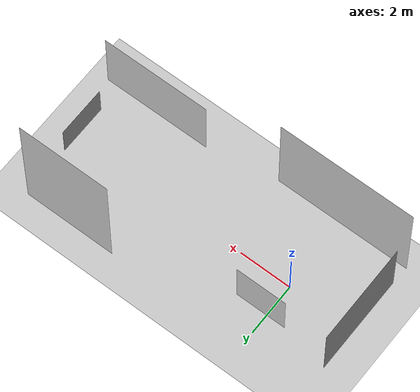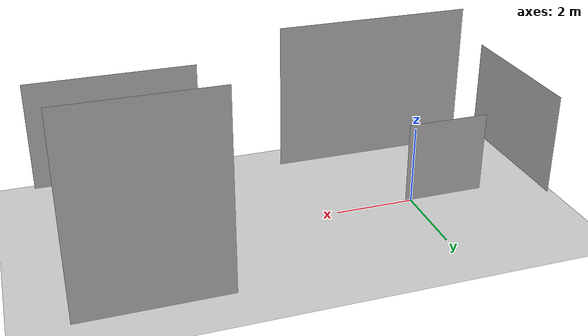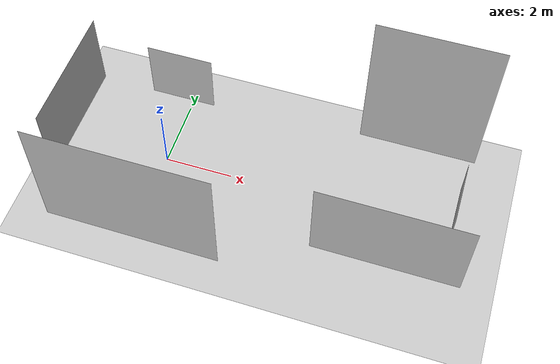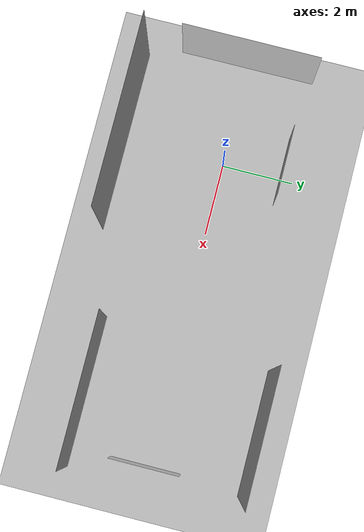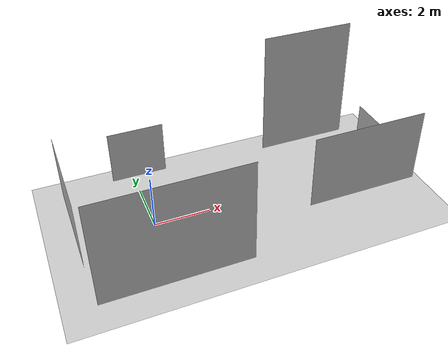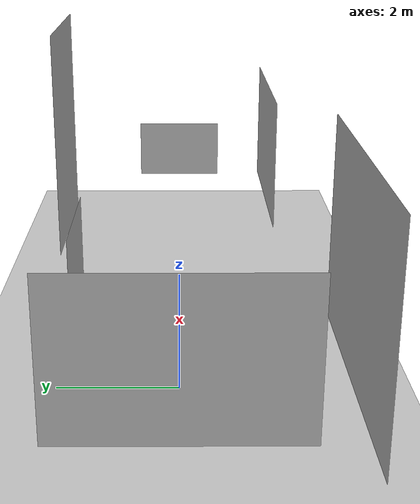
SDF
<sdf version="1.5">
 <world name="default">
  <physics name="default_physics" default="0" type="ode">
   <max_step_size>0.001</max_step_size>
   <real_time_factor>1</real_time_factor>
   <real_time_update_rate>1000</real_time_update_rate>
  </physics>
  <gravity>0 0 -9.8</gravity>
  <magnetic_field>6e-06 2.3e-05 -4.2e-05</magnetic_field>
  <atmosphere type="adiabatic"/>
  <scene><ambient>0.7 0.7 0.7 1</ambient><background>0.9 0.9 0.9 1</background><shadows>0</shadows></scene>
  <light name="sun" type="directional">
   <cast_shadows>0</cast_shadows>
   <pose>0 0 10 0 -0 0</pose>
   <diffuse>0.8 0.8 0.8 1</diffuse>
   <specular>0.1 0.1 0.1 1</specular>
   <attenuation>
    <range>1000</range>
    <constant>0.9</constant>
    <linear>0.01</linear>
    <quadratic>0.001</quadratic>
   </attenuation>
   <direction>-0.5 0.5 -1</direction>
  </light>
  <include><uri>model://ground_plane</uri></include>
  <include><uri>model://billboard_1</uri><pose>0 1.6 2 1.57 0 0</pose></include>
  <include><uri>model://billboard_2</uri><pose>-2.7 0 2 1.57 0 1.57</pose></include>
  <include><uri>model://billboard_3</uri><pose>0 -2.8 2 1.57 0 0</pose></include>
  <include><uri>model://billboard_4</uri><pose>7 2.6 2.5 1.57 0 0</pose></include>
  <include><uri>model://billboard_5</uri><pose>7 -2 2.2 1.57 0 0</pose></include>
  <include><uri>model://billboard_6</uri><pose>8.5 0 1.6 1.57 0 1.57</pose></include>
  <spherical_coordinates>
   <surface_model>EARTH_WGS84</surface_model>
   <latitude_deg>0</latitude_deg>
   <longitude_deg>0</longitude_deg>
   <elevation>0</elevation>
   <heading_deg>0</heading_deg>
  </spherical_coordinates>
 </world>
</sdf>

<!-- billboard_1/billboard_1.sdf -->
<sdf version="1.5">
  <model name="billboard_1">
    <static>true</static>
      <link name="billboard_1">
        <collision name="billboard-collision">
          <pose>0 0 0 0 0 0</pose>
          <geometry>
            <box>
              <size>0.297 0.42 0.00</size>
            </box>
          </geometry>
        </collision>
        <visual name="billboard-visual">
          <pose>0 0 0 0 0 0</pose>
          <geometry>
            <box>
              <size>1.91 1.91 0.00</size>
            </box>
          </geometry>
          <material>
            <script>
              <uri>model://billboard_1/materials/scripts</uri>
              <uri>model://billboard_1/materials/textures</uri>
              <name>billboard_1/Diffuse</name>
            </script>
          </material>
        </visual>
      </link>
  </model>
</sdf>

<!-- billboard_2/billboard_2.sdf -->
<sdf version="1.5">
  <model name="billboard_2">
    <static>true</static>
      <link name="billboard_2">
        <collision name="billboard-collision">
          <pose>0 0 0 0 0 0</pose>
          <geometry>
            <box>
              <size>0.297 0.42 0.00</size>
            </box>
          </geometry>
        </collision>
        <visual name="billboard-visual">
          <pose>0 0 0 0 0 0</pose>
          <geometry>
            <box>
              <size>3.7 2.47 0.00</size>
            </box>
          </geometry>
          <material>
            <script>
              <uri>model://billboard_2/materials/scripts</uri>
              <uri>model://billboard_2/materials/textures</uri>
              <name>billboard_2/Diffuse</name>
            </script>
          </material>
        </visual>
      </link>
  </model>
</sdf>

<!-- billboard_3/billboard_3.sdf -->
<sdf version="1.5">
  <model name="billboard_3">
    <static>true</static>
      <link name="billboard_3">
        <collision name="billboard-collision">
          <pose>0 0 0 0 0 0</pose>
          <geometry>
            <box>
              <size>0.297 0.42 0.00</size>
            </box>
          </geometry>
        </collision>
        <visual name="billboard-visual">
          <pose>0 0 0 0 0 0</pose>
          <geometry>
            <box>
              <size>5.17 3.88 0.00</size>
            </box>
          </geometry>
          <material>
            <script>
              <uri>model://billboard_3/materials/scripts</uri>
              <uri>model://billboard_3/materials/textures</uri>
              <name>billboard_3/Diffuse</name>
            </script>
          </material>
        </visual>
      </link>
  </model>
</sdf>

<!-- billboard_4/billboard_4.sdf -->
<sdf version="1.5">
  <model name="billboard_4">
    <static>true</static>
      <link name="billboard_4">
        <collision name="billboard-collision">
          <pose>0 0 0 0 0 0</pose>
          <geometry>
            <box>
              <size>3.5 4.8 0.00</size>
            </box>
          </geometry>
        </collision>
        <visual name="billboard-visual">
          <pose>0 0 0 0 0 0</pose>
          <geometry>
            <box>
              <size>3.5 4.8 0.00</size>
            </box>
          </geometry>
          <material>
            <script>
              <uri>model://billboard_4/materials/scripts</uri>
              <uri>model://billboard_4/materials/textures</uri>
              <name>billboard_4/Diffuse</name>
            </script>
          </material>
        </visual>
      </link>
  </model>
</sdf>

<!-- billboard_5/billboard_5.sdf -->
<sdf version="1.5">
  <model name="billboard_5">
    <static>true</static>
      <link name="billboard_5">
        <collision name="billboard-collision">
          <pose>0 0 0 0 0 0</pose>
          <geometry>
            <box>
              <size>4.1 2.7 0.00</size>
            </box>
          </geometry>
        </collision>
        <visual name="billboard-visual">
          <pose>0 0 0 0 0 0</pose>
          <geometry>
            <box>
              <size>4.1 2.7 0.00</size>
            </box>
          </geometry>
          <material>
            <script>
              <uri>model://billboard_5/materials/scripts</uri>
              <uri>model://billboard_5/materials/textures</uri>
              <name>billboard_5/Diffuse</name>
            </script>
          </material>
        </visual>
      </link>
  </model>
</sdf>

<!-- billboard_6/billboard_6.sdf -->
<sdf version="1.5">
  <model name="billboard_6">
    <static>true</static>
      <link name="billboard_6">
        <collision name="billboard-collision">
          <pose>0 0 0 0 0 0</pose>
          <geometry>
            <box>
              <size>1.9 1.3 0.00</size>
            </box>
          </geometry>
        </collision>
        <visual name="billboard-visual">
          <pose>0 0 0 0 0 0</pose>
          <geometry>
            <box>
              <size>1.9 1.3 0.00</size>
            </box>
          </geometry>
          <material>
            <script>
              <uri>model://billboard_6/materials/scripts</uri>
              <uri>model://billboard_6/materials/textures</uri>
              <name>billboard_6/Diffuse</name>
            </script>
          </material>
        </visual>
      </link>
  </model>
</sdf>
